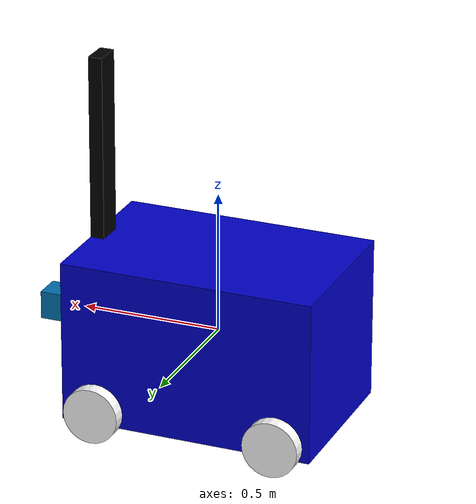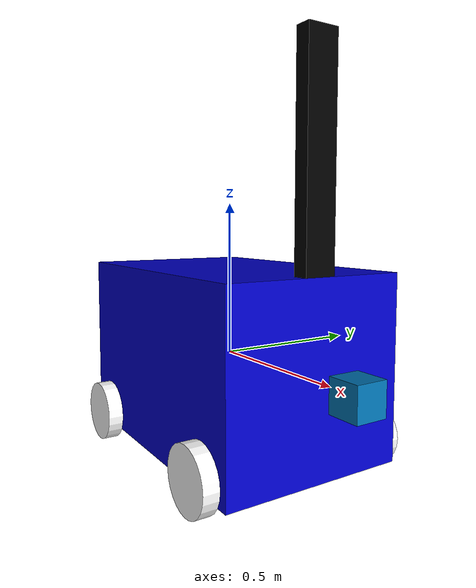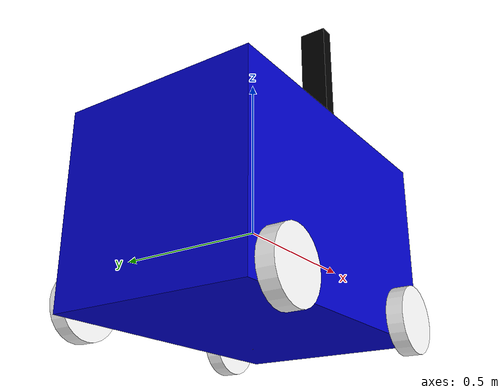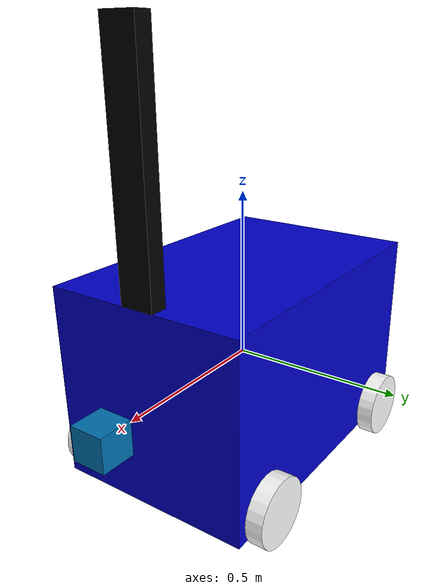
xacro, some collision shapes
<?xml version="1.0"?> <!-- name="visual"-->
<robot xmlns:xacro="http://www.ros.org/wiki/xacro" name="igvc">

<property name="mb_pi" value="3.14159265" />

<xacro:property name="chassis_sx" value="0.9100"/>
<xacro:property name="chassis_sy" value="0.600"/>
<xacro:property name="chassis_sz" value="0.5800"/>
<property name="chassis_mass" value="20"/>

<property name="wheel_radius" value=".1"/>
<property name="wheel_width" value=".05"/>
<property name="wheel_mass" value="1"/>

<property name="wheel_joint_urdf_max_effort" value="100.0"/>
<property name="wheel_joint_urdf_max_velocity" value="100.0"/>
<property name="wheel_joint_urdf_damping" value="0.0"/>
<property name="wheel_joint_urdf_friction" value="0.0"/>
<property name="wheel_joint_sdf_damping" value="0.0" />
<property name="wheel_joint_sdf_friction" value="0.0" />
<property name="wheel_mechanical_reduction" value="10" />

  <property name="roller_height" value="0.0470" /> <!-- 1.853" on plans -->
  <property name="roller_radius" value="0.0758" /> <!-- 5.976" diameter on plans -->
  <property name="roller_mass" value="0.9072" /> <!-- 2lbs on plans -->

<property name="roller_joint_urdf_max_effort" value="100.0"/>
<property name="roller_joint_urdf_max_velocity" value="100.0"/>
<property name="roller_joint_urdf_damping" value="0.0"/>
<property name="roller_joint_urdf_friction" value="0.0"/>
<property name="roller_joint_sdf_damping" value="0.0" />
<property name="roller_joint_sdf_friction" value="0.0" />
  <property name="roller_link_sdf_mu" value="1.0" /> <!-- was 0.2 -->
  <property name="roller_link_sdf_kp" value="1000000.0" /> <!-- kp and kd were 1e6 and 100 (these used to be values for rubber) -->
  <property name="roller_link_sdf_kd" value="100.0" />

  <!-- Macros definition. -->

  <xacro:macro name="box_inertia" params="sizeX sizeY sizeZ mass *origin">
    <inertial>
      <mass value="${mass}" />
      <insert_block name="origin" />
      <inertia ixx="${mass / 12 * (sizeY * sizeY + sizeZ * sizeZ)}" ixy="0.0" ixz="0.0"
               iyy="${mass / 12 * (sizeX * sizeX + sizeZ * sizeZ)}" iyz="0.0"
               izz="${mass / 12 * (sizeX * sizeX + sizeY * sizeY)}" />
    </inertial>
  </xacro:macro>

  <xacro:macro name="cylinder_inertia" params="radius height mass *origin">
    <inertial>
      <mass value="${mass}" />
      <insert_block name="origin" />
      <inertia ixx="${0.0833333 * mass * (3 * radius * radius + height * height)}" ixy="0.0" ixz="0.0"
               iyy="${0.0833333 * mass * (3 * radius * radius + height * height)}" iyz="0.0"
               izz="${0.5 * mass * radius * radius}" />
    </inertial>
  </xacro:macro>

  <material name="blue">
    <color rgba="0 0 .8 1"/>
  </material>
  <material name="black">
    <color rgba="0 0 0 1"/>
  </material>
  <material name="white">
    <color rgba="1 1 1 1"/>
  </material>

  <!-- Wheel definition. -->

<xacro:macro name="robot_wheel" params="fb lr parent sideX sideY sideZ">

  <joint name="${fb}_${lr}_wheel_joint" type="continuous">
    <axis xyz="0 1 0"/>
    <parent link="base_link"/>
    <child link="${fb}_${lr}_wheel"/>
    <origin rpy="0 0 0" xyz="${sideX} ${sideY} ${sideZ}"/>
    <limit effort="${roller_joint_urdf_max_effort}" velocity="${roller_joint_urdf_max_velocity}"/>
    <dynamics damping="${roller_joint_urdf_damping}" friction="${roller_joint_urdf_friction}"/>
  </joint>

  <link name="${fb}_${lr}_wheel">
    <collision>
      <origin rpy="1.57075 0 0" xyz="0 0 0"/>
      <geometry>
        <cylinder length="0.05" radius="0.1"/>
      </geometry>
    </collision>
    <visual>
      <origin rpy="1.57075 0 0" xyz="0 0 0"/>
      <geometry>
        <cylinder length="0.05" radius="0.1"/>
      </geometry>
      <material name="white"/>
      <origin rpy="0 0 0" xyz="0 0 0"/>
    </visual>
    <xacro:cylinder_inertia radius="${wheel_radius}" height="${wheel_width}" mass="${wheel_mass}">
      <origin xyz="0.0 0.0 0.0" rpy="${mb_pi / 2.0} 0.0 0.0" />
    </xacro:cylinder_inertia>
  </link>

  <gazebo reference="${fb}_${lr}_wheel_joint">
    <dynamics damping="${roller_joint_sdf_damping}" friction="${roller_joint_sdf_friction}"/>
  </gazebo>
  <gazebo reference="${fb}_${lr}_wheel">
    <selfCollide>false</selfCollide>
    <static>false</static>
    <turnGravityOff>false</turnGravityOff>
    <material>Gazebo/Grey</material>
  </gazebo>

  <joint name="${fb}_${lr}_roller_joint" type="continuous">
      <parent link="${fb}_${lr}_wheel" />
      <child link = "${fb}_${lr}_roller" />
      <origin xyz="0.0 0.0 0.0" rpy="0.0 0.0 0.0" />
      <axis xyz="${-(sideX * sideY)} 1.0 0.0" />
      <limit effort="${roller_joint_urdf_max_effort}" velocity="${roller_joint_urdf_max_velocity}"/>
      <dynamics damping="${roller_joint_urdf_damping}" friction="${roller_joint_urdf_friction}"/>
    </joint>
    <gazebo reference="${fb}_${lr}_roller_joint">
      <dynamics damping="${roller_joint_sdf_damping}" friction="${roller_joint_sdf_friction}"/>
    </gazebo>

    <link name="${fb}_${lr}_roller" >
      <collision>
        <geometry>
          <sphere radius="${roller_radius}"/>
        </geometry>
        <origin xyz="0.0 0.0 0.0" rpy="0.0 0.0 0.0" />
      </collision>
      <xacro:cylinder_inertia radius="${roller_radius}" height="${roller_height}" mass="${roller_mass}">
        <origin xyz="0.0 0.0 0.0" rpy="${mb_pi / 2.0} 0.0 0.0" />
      </xacro:cylinder_inertia>
    </link>
    <gazebo reference="${fb}_${lr}_roller">
      <selfCollide>false</selfCollide>
      <static>false</static>
      <turnGravityOff>false</turnGravityOff>
      <kp>${roller_link_sdf_kp}</kp>
      <kd>${roller_link_sdf_kd}</kd>
      <mu1>${roller_link_sdf_mu}</mu1>
      <mu2>${roller_link_sdf_mu}</mu2>
      <fdir1>0 1 0</fdir1>
      <maxVel>10.0</maxVel>
      <minDepth>0.00</minDepth>
    </gazebo>

    <transmission name="${fb}_${lr}_wheel_transmission">
	<type>transmission_interface/SimpleTransmission</type>
	<actuator name="wheel_motor_fl" />
	<joint name="${fb}_${lr}_wheel_joint" />
	<mechanicalReduction>${wheel_mechanical_reduction}</mechanicalReduction>
    </transmission>

</xacro:macro>

  <!-- Robot definition. -->

  <link name="base_footprint">
    <inertial>
      <mass value="0.0001" />
      <origin xyz="0 0 0" />
      <inertia ixx="0.0001" ixy="0.0" ixz="0.0"
          iyy="0.0001" iyz="0.0"
          izz="0.0001" />
    </inertial>
    <visual>
        <origin xyz="0 0 0" rpy="0 0 0" />
        <geometry>
            <box size="0.001 0.001 0.001" />
        </geometry>
    </visual>
  </link>

  <joint name="base_footprint_joint" type="fixed">
    <origin xyz="0 0 ${-wheel_radius - .24}" rpy="0 0 0" />
    <parent link="base_link"/>
    <child link="base_footprint" />
  </joint>

  <link name="base_link">
    <collision>
      <origin xyz="0 0 0" rpy="0 0 0"/>
      <geometry>
        <box size="${chassis_sx} ${chassis_sy} ${chassis_sz}"/>
      </geometry>
    </collision>

    <visual>
      <geometry>
        <box size="${chassis_sx} ${chassis_sy} ${chassis_sz}"/>
      </geometry>
      <material name="blue"/>
    </visual>

    <xacro:box_inertia sizeX="${chassis_sx}" sizeY="${chassis_sy}" sizeZ="${chassis_sz}" mass="${chassis_mass}">
      <origin xyz="0.0 0.0 0.0" rpy="0.0 0.0 0.0" />
    </xacro:box_inertia>

  </link>

  <link name="camera_pole">
    <collision>
      <origin xyz=".43 0 .62" rpy="0 0 0"/>
      <geometry>
        <box size=".05 .1 .66"/>
      </geometry>
    </collision>

    <visual>
      <origin rpy="0 0 0 " xyz=".43 0 .62"/>
      <geometry>
        <box size=".05 .1 .66"/>
      </geometry>
      <material name="black"/>
      <origin rpy="0 0 0" xyz="0 0 0"/>
    </visual>
  </link >

  <joint name="camera_pole_joint" type="fixed">
    <parent link="base_link"/>
    <child link="camera_pole"/>
    <origin xyz="0 0 0"/>
  </joint>

  <joint name="camera_joint" type="fixed">
    <parent link="camera_pole"/>
    <child link="testKinect"/>
    <origin xyz="0 0 0"/>
  </joint>

  <link name="testKinect">
    <collision>
      <origin xyz="0 0 0" rpy="0 0 0"/>
      <geometry>
        <box size=".05 .3 .1"/>
      </geometry>
    </collision>

    <visual>
      <origin rpy="0 0 0 " xyz=".43 0 .62"/>
      <geometry>
        <box size=".05 .1 .66"/>
      </geometry>
      <material name="black"/>
      <origin rpy="0 0 0" xyz="0 0 0"/>
    </visual>
  </link >

  <joint name="hokuyo_joint" type="fixed">
    <axis xyz="0 1 0" />
    <origin xyz=".6 0 0" rpy="0 0 0"/>
    <parent link="base_link"/>
    <child link="hokuyo_link"/>
  </joint>

  <!-- Hokuyo Laser -->
  <link name="hokuyo_link">
    <collision>
      <origin xyz="0 0 0" rpy="0 0 0"/>
      <geometry>
    <box size="0.1 0.1 0.1"/>
      </geometry>
    </collision>

    <visual>
      <origin xyz="0 0 0" rpy="0 0 0"/>
      <geometry>
        <mesh filename="package://robot_description/meshes/hokuyo.dae"/>
      </geometry>
    </visual>

    <inertial>
      <mass value="1e-5" />
      <origin xyz="0 0 0" rpy="0 0 0"/>
      <inertia ixx="1e-6" ixy="0" ixz="0" iyy="1e-6" iyz="0" izz="1e-6" />
    </inertial>
  </link>
  <include filename="igvc.gazebo" />

  <xacro:robot_wheel fb="front" lr="left" parent="base_link" sideX="0.33" sideY="0.325" sideZ="-.24" />
  <xacro:robot_wheel fb="back" lr="left" parent="base_link" sideX="-0.33" sideY="0.325" sideZ="-.24" />
  <xacro:robot_wheel fb="back" lr="right" parent="base_link" sideX="0.33" sideY="-0.325" sideZ="-.24" />
  <xacro:robot_wheel fb="front" lr="right" parent="base_link" sideX="-0.33" sideY="-0.325" sideZ="-.24" />

</robot>
